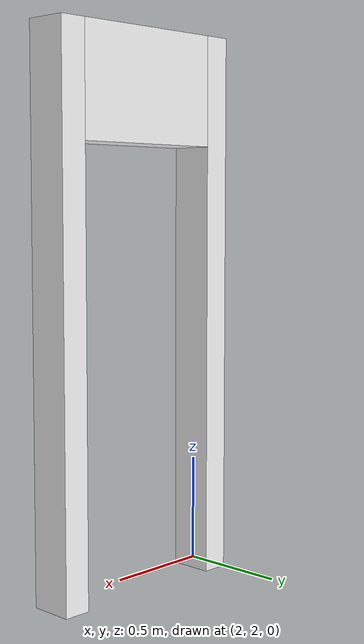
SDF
<?xml version='1.0'?>
<sdf version='1.4'>
  <model name='outside_hallway'>
    <link name='Wall_South'>
      <visual name='Wall_South_Visual_0'>
        <pose>-0.4375 0 1.25 0 -0 0</pose>
        <geometry>
          <box>
            <size>0.125 0.2 2.5</size>
          </box>
        </geometry>
        <material>
          <script>
            <uri>file://media/materials/scripts/gazebo.material</uri>
            <name>Gazebo/White</name>
          </script>
        </material>
      </visual>
      <collision name='Wall_South_Collision_0'>
        <geometry>
          <box>
            <size>0.125 0.2 2.5</size>
          </box>
        </geometry>
        <pose>-0.4375 0 1.25 0 -0 0</pose>
      </collision>
      <visual name='Wall_South_Visual_1'>
        <pose>0.4375 0 1.25 0 -0 0</pose>
        <geometry>
          <box>
            <size>0.125 0.2 2.5</size>
          </box>
        </geometry>
        <material>
          <script>
            <uri>file://media/materials/scripts/gazebo.material</uri>
            <name>Gazebo/White</name>
          </script>
        </material>
      </visual>
      <collision name='Wall_South_Collision_1'>
        <geometry>
          <box>
            <size>0.125 0.2 2.5</size>
          </box>
        </geometry>
        <pose>0.4375 0 1.25 0 -0 0</pose>
      </collision>
      <visual name='Wall_South_Visual_2'>
        <pose>0 0 2.25 0 -0 0</pose>
        <geometry>
          <box>
            <size>0.75 0.2 0.5</size>
          </box>
        </geometry>
        <material>
          <script>
            <uri>file://media/materials/scripts/gazebo.material</uri>
            <name>Gazebo/White</name>
          </script>
        </material>
      </visual>
      <collision name='Wall_South_Collision_2'>
        <geometry>
          <box>
            <size>0.75 0.2 0.5</size>
          </box>
        </geometry>
        <pose>0 0 2.25 0 -0 0</pose>
      </collision>
    </link>
    <pose>2.5 2.1 0 0 -0 0</pose>
    <static>1</static>
  </model>
</sdf>
